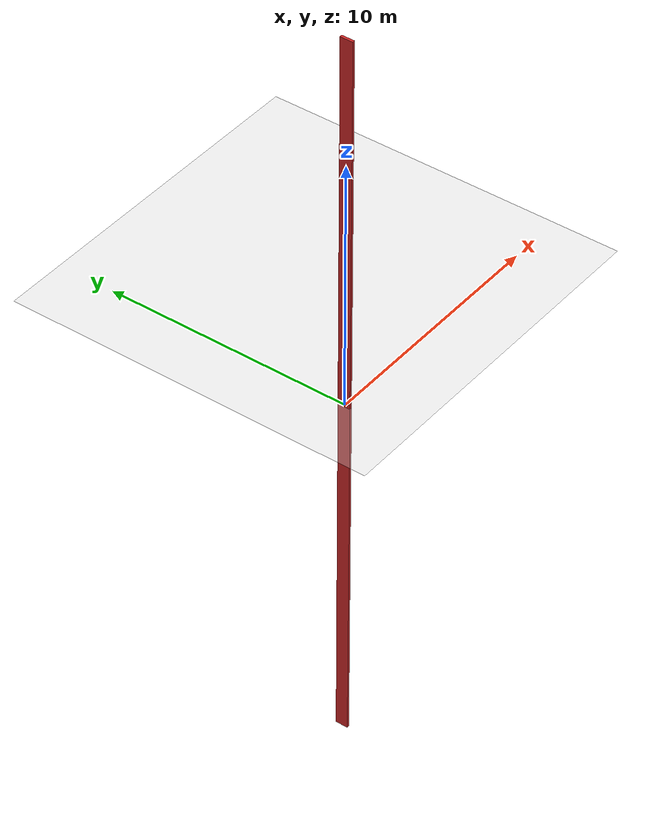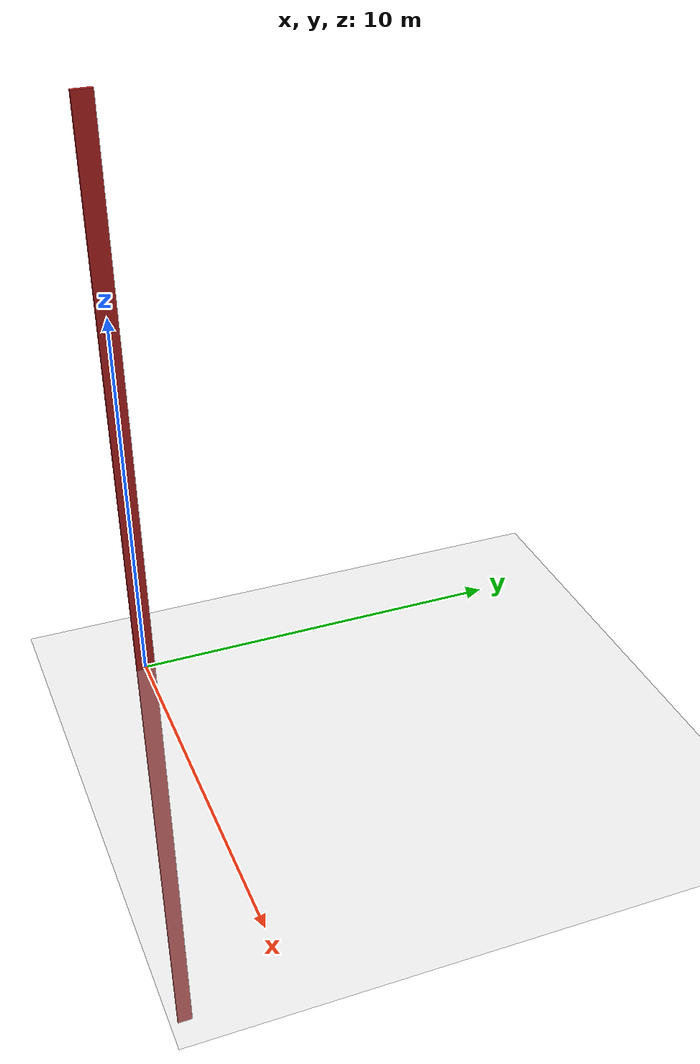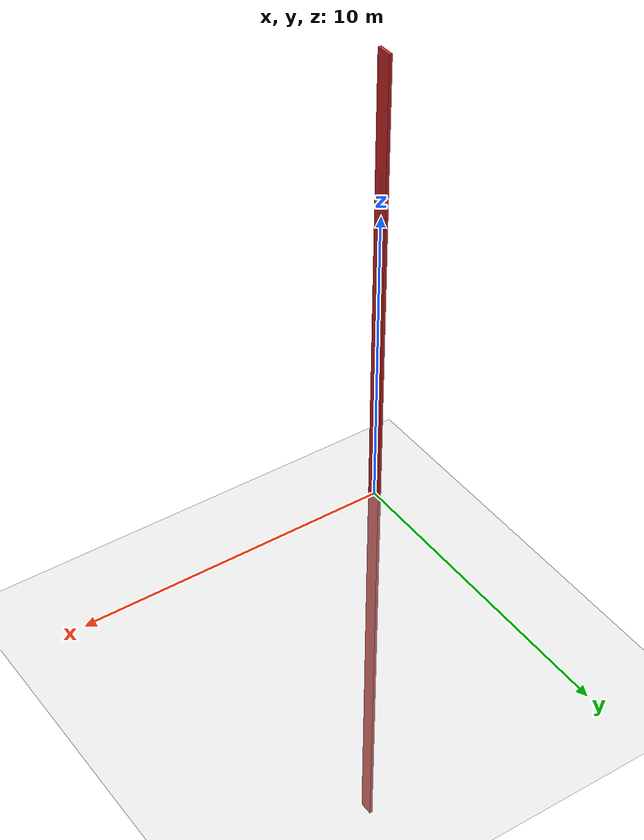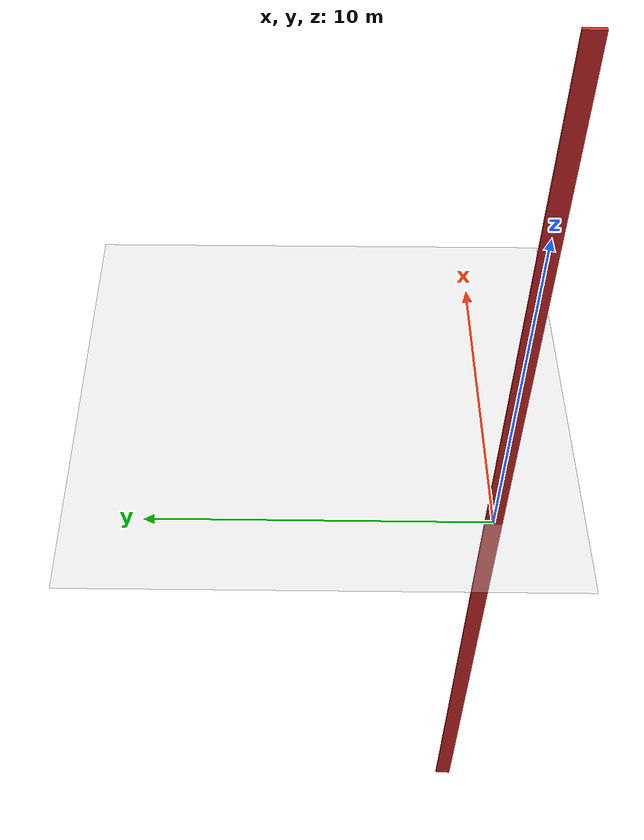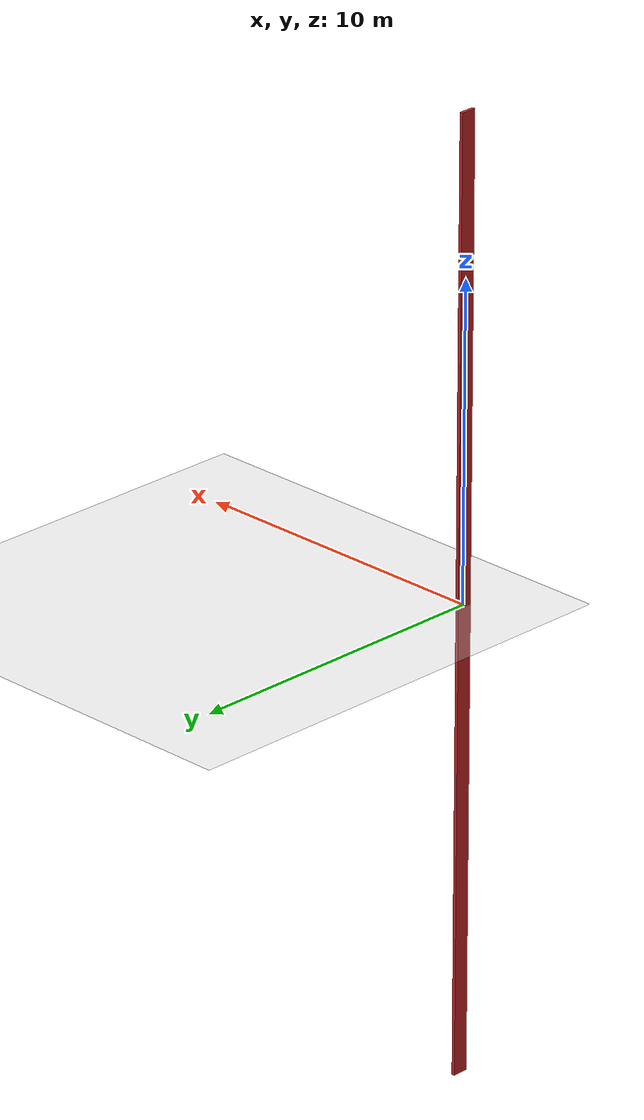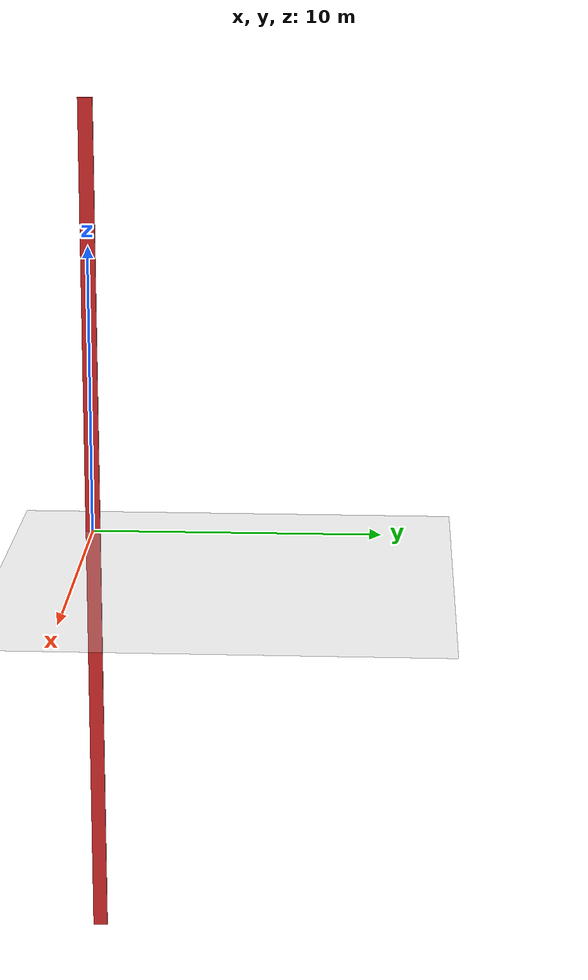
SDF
<?xml version="1.0" ?>
<sdf version="1.7">
    <world name="new_world">
        <include>
            <uri>https://fuel.gazebosim.org/1.0/OpenRobotics/models/Ground Plane</uri>
        </include>

        <model name="border">
            <static>true</static>
            <link name="link">
                <collision name="collision">
                    <geometry>
                        <box>
                            <size>0.1 0.5 30</size>
                        </box>
                    </geometry>
                </collision>
                <visual name="visual">
                    <geometry>
                        <box>
                            <size>0.1 0.5 30</size>
                        </box>
                    </geometry>
                    <material>
                        <script>
                            <uri>file://media/materials/scripts/gazebo.material</uri>
                            <name>Gazebo/Red</name>
                        </script>
                    </material>
                </visual>
            </link>
        </model>
    </world>
</sdf>
